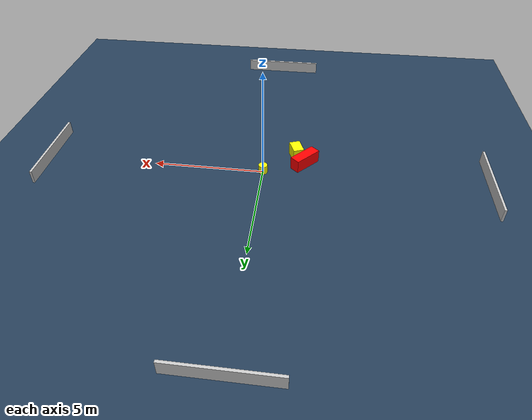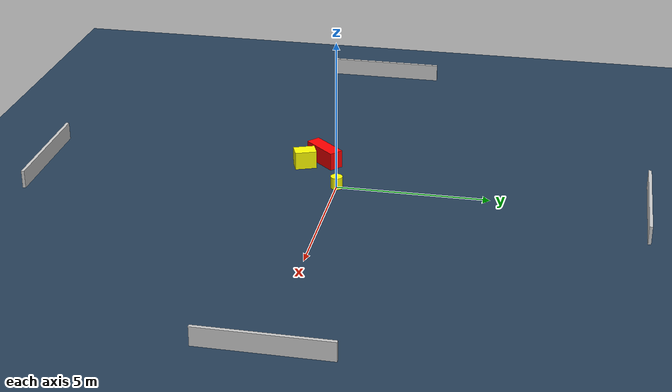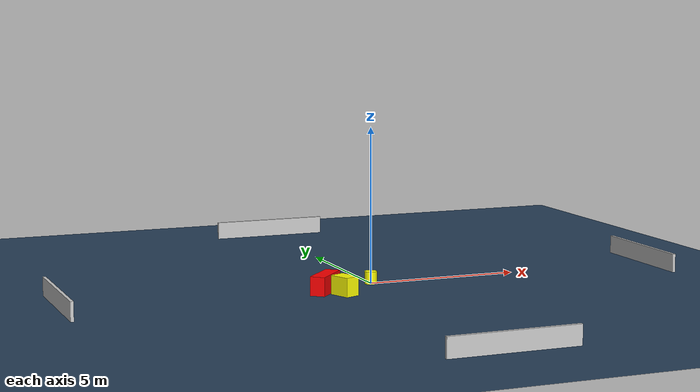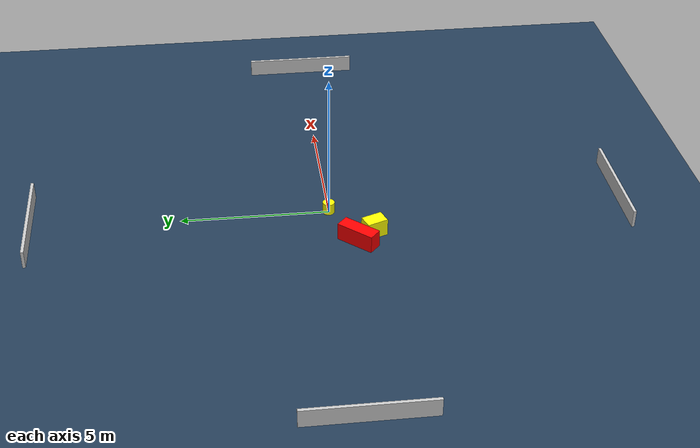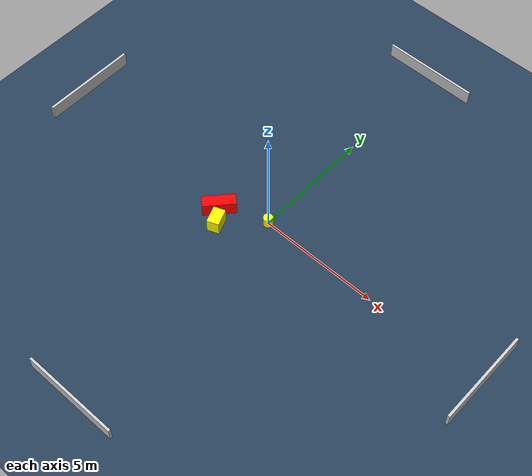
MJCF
<?xml version="1.0" ?>
<mujoco model="generated_environment">
  <option timestep="0.01" integrator="RK4" cone="elliptic"/>
  <default>
    <geom density="1"/>
  </default>
  <asset>
    <texture builtin="gradient" height="3072" name="skybox" rgb1="0.3 0.5 0.7" rgb2="0 0 0" type="skybox" width="512"/>
    <texture builtin="checker" height="300" name="groundplane" rgb1="0.2 0.3 0.4" rgb2="0.1 0.2 0.3" type="2d" width="300"/>
    <material name="groundplane" reflectance="0.2" texrepeat="5 5" texture="groundplane"/>
  </asset>
  <worldbody>
    <light dir="0 0 -1" directional="true" pos="0 0 1.5"/>
    <geom condim="3" friction="0.5 0.005 0.001" material="groundplane" name="floor" pos="0 0 0" size="0 0 0.05" type="plane"/>
    <body name="walls">
      <geom name="wall_1" condim="4" pos="-10.0 0.0 0.3" rgba="0.800000011920929 0.800000011920929 0.800000011920929 1.0" size="0.05 2.0 0.3" type="box"/>
      <geom name="wall_2" condim="4" pos="10.0 0.0 0.3" rgba="0.800000011920929 0.800000011920929 0.800000011920929 1.0" size="0.05 2.0 0.3" type="box"/>
      <geom name="wall_3" condim="4" pos="0.0 -10.0 0.3" rgba="0.800000011920929 0.800000011920929 0.800000011920929 1.0" size="2.0 0.05 0.3" type="box"/>
      <geom name="wall_4" condim="4" pos="0.0 10.0 0.3" rgba="0.800000011920929 0.800000011920929 0.800000011920929 1.0" size="2.0 0.05 0.3" type="box"/>
    </body>
    <body name="robot">
      <joint name="joint_x" type="slide" pos="0 0 0" axis="1 0 0"/>
      <joint name="joint_y" type="slide" pos="0 0 0" axis="0 1 0"/>
      <geom name="robot" type="cylinder" pos="0.0 0.0 0.2" size="0.2 0.2 0.0" mass="5.0" friction="1.0 0.005 0.0001" condim="4" rgba="1.0 1.0 0.0 1.0"/>
    </body>
    <body name="obstacle_1_movable">
      <geom name="obstacle_1_movable" condim="4" pos="-1.4169755447987535 -1.3609494600163992 0.3" euler="0 0 201.35049024240308" friction="0.0 0.005 0.001" rgba="1.0 1.0 0.0 1.0" size="0.24691515760076826 0.36155550661681113 0.3" type="box" mass="0.1"/>
      <joint type="free"/>
    </body>
    <body name="obstacle_2_static">
      <geom name="obstacle_2_static" condim="4" pos="-1.8413505384559965 -0.7728418933642041 0.3" euler="0 0 47.871567676043156" friction="0.0 0.005 0.001" rgba="1.0 0.0 0.0 1.0" size="0.6659455204998586 0.23919949085125114 0.3" type="box"/>
    </body>
  </worldbody>
  <actuator>
    <motor name="actuator_x" joint="joint_x" gear="1" ctrlrange="-1 1"/>
    <motor name="actuator_y" joint="joint_y" gear="1" ctrlrange="-1 1"/>
  </actuator>
</mujoco>
